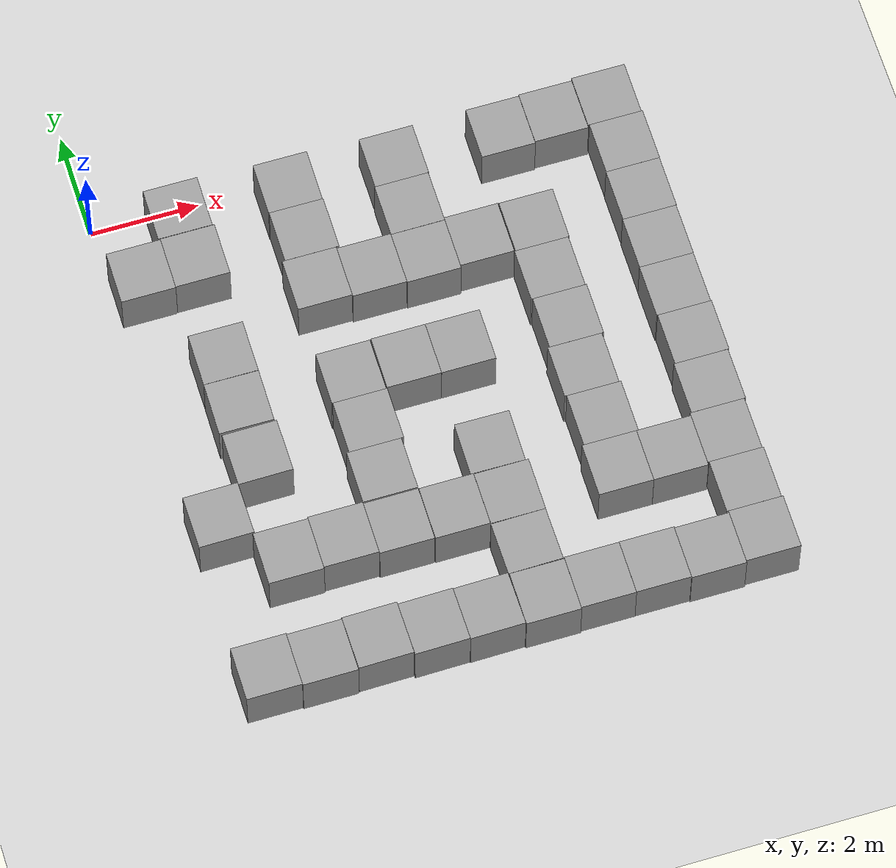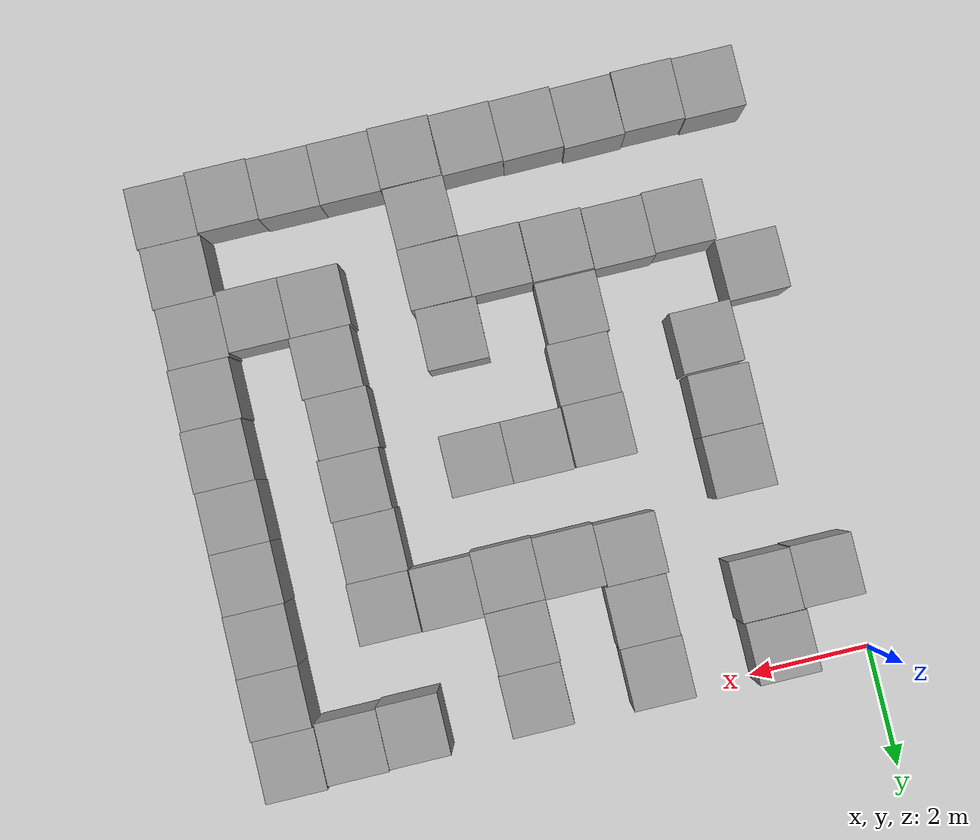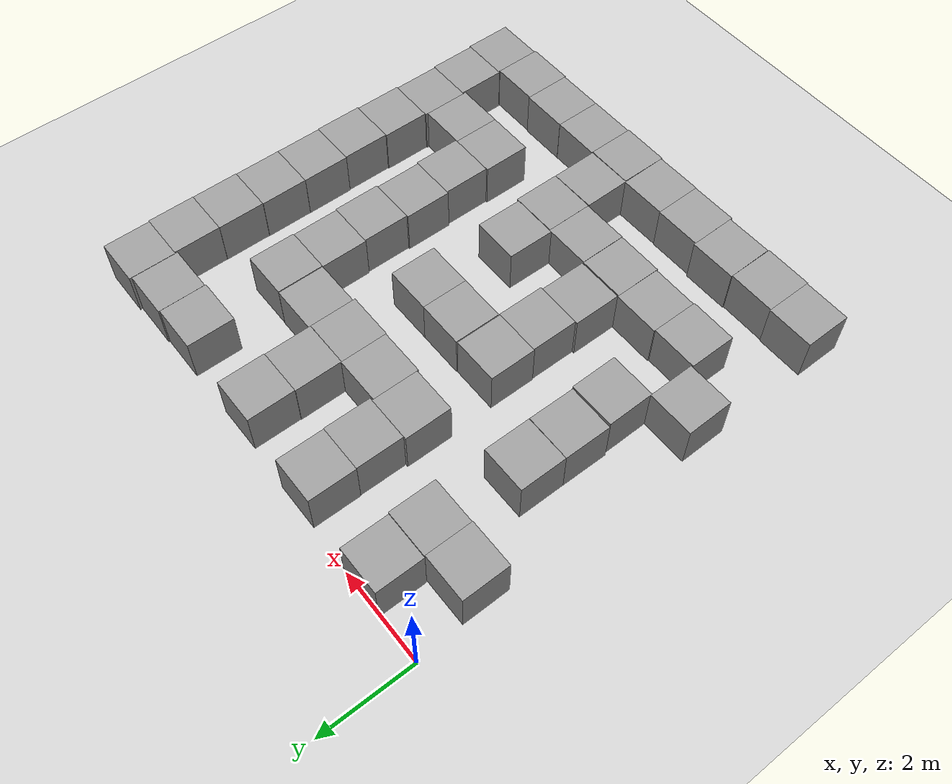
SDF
<sdf version="1.7">
 <world name="default">
  <model name="ground_plane">
   <static>1</static>
   <link name="link">
    <collision name="collision">
     <geometry><plane><normal>0 0 1</normal><size>100 100</size></plane></geometry>
     <surface><friction><ode><mu>100</mu><mu2>50</mu2></ode></friction></surface>
    </collision>
    <visual name="visual">
     <cast_shadows>0</cast_shadows>
     <geometry><plane><normal>0 0 1</normal><size>100 100</size></plane></geometry>
     <material>
      <script><uri>file://media/materials/scripts/gazebo.material</uri><name>Gazebo/Grey</name></script>
     </material>
    </visual>
   </link>
  </model>
  <model name="unit_box_54">
   <pose>3.53321 -0.535788 0.5 0 -0 -0.000787</pose>
   <link name="link">
    <inertial>
     <mass>1</mass>
     <inertia>
      <ixx>0.166667</ixx>
      <ixy>0</ixy>
      <ixz>0</ixz>
      <iyy>0.166667</iyy>
      <iyz>0</iyz>
      <izz>0.166667</izz>
     </inertia>
    </inertial>
    <collision name="collision"><geometry><box><size>1 1 1</size></box></geometry></collision>
    <visual name="visual">
     <geometry><box><size>1 1 1</size></box></geometry>
     <material>
      <script><name>Gazebo/Grey</name><uri>file://media/materials/scripts/gazebo.material</uri></script>
     </material>
    </visual>
   </link>
  </model>
  <model name="unit_box_56">
   <pose>5.49566 -0.577664 0.5 0 -0 0.003498</pose>
   <link name="link">
    <inertial>
     <mass>1</mass>
     <inertia>
      <ixx>0.166667</ixx>
      <ixy>0</ixy>
      <ixz>0</ixz>
      <iyy>0.166667</iyy>
      <iyz>0</iyz>
      <izz>0.166667</izz>
     </inertia>
    </inertial>
    <collision name="collision"><geometry><box><size>1 1 1</size></box></geometry></collision>
    <visual name="visual">
     <geometry><box><size>1 1 1</size></box></geometry>
     <material>
      <script><name>Gazebo/Grey</name><uri>file://media/materials/scripts/gazebo.material</uri></script>
     </material>
    </visual>
   </link>
  </model>
  <model name="unit_box_57">
   <pose>8.49644 -0.535621 0.5 0 -0 0</pose>
   <link name="link">
    <inertial>
     <mass>1</mass>
     <inertia>
      <ixx>0.166667</ixx>
      <ixy>0</ixy>
      <ixz>0</ixz>
      <iyy>0.166667</iyy>
      <iyz>0</iyz>
      <izz>0.166667</izz>
     </inertia>
    </inertial>
    <collision name="collision"><geometry><box><size>1 1 1</size></box></geometry></collision>
    <visual name="visual">
     <geometry><box><size>1 1 1</size></box></geometry>
     <material>
      <script><name>Gazebo/Grey</name><uri>file://media/materials/scripts/gazebo.material</uri></script>
     </material>
    </visual>
   </link>
  </model>
  <model name="unit_box_58">
   <pose>7.49483 -0.55983 0.5 0 -0 0</pose>
   <link name="link">
    <inertial>
     <mass>1</mass>
     <inertia>
      <ixx>0.166667</ixx>
      <ixy>0</ixy>
      <ixz>0</ixz>
      <iyy>0.166667</iyy>
      <iyz>0</iyz>
      <izz>0.166667</izz>
     </inertia>
    </inertial>
    <collision name="collision"><geometry><box><size>1 1 1</size></box></geometry></collision>
    <visual name="visual">
     <geometry><box><size>1 1 1</size></box></geometry>
     <material>
      <script><name>Gazebo/Grey</name><uri>file://media/materials/scripts/gazebo.material</uri></script>
     </material>
    </visual>
   </link>
  </model>
  <model name="unit_box_65">
   <pose>9.50305 -0.487629 0.5 0 -0 -0.000262</pose>
   <link name="link">
    <inertial>
     <mass>1</mass>
     <inertia>
      <ixx>0.166667</ixx>
      <ixy>0</ixy>
      <ixz>0</ixz>
      <iyy>0.166667</iyy>
      <iyz>0</iyz>
      <izz>0.166667</izz>
     </inertia>
    </inertial>
    <collision name="collision"><geometry><box><size>1 1 1</size></box></geometry></collision>
    <visual name="visual">
     <geometry><box><size>1 1 1</size></box></geometry>
     <material>
      <script><name>Gazebo/Grey</name><uri>file://media/materials/scripts/gazebo.material</uri></script>
     </material>
    </visual>
   </link>
  </model>
  <model name="unit_box_66">
   <pose>9.52677 -1.48764 0.5 0 0 -0.00026</pose>
   <link name="link">
    <inertial>
     <mass>1</mass>
     <inertia>
      <ixx>0.166667</ixx>
      <ixy>0</ixy>
      <ixz>0</ixz>
      <iyy>0.166667</iyy>
      <iyz>0</iyz>
      <izz>0.166667</izz>
     </inertia>
    </inertial>
    <collision name="collision"><geometry><box><size>1 1 1</size></box></geometry></collision>
    <visual name="visual">
     <geometry><box><size>1 1 1</size></box></geometry>
     <material>
      <script><name>Gazebo/Grey</name><uri>file://media/materials/scripts/gazebo.material</uri></script>
     </material>
    </visual>
   </link>
  </model>
  <model name="unit_box_67">
   <pose>9.52057 -2.48769 0.5 -0 -0 -0.000159</pose>
   <link name="link">
    <inertial>
     <mass>1</mass>
     <inertia>
      <ixx>0.166667</ixx>
      <ixy>0</ixy>
      <ixz>0</ixz>
      <iyy>0.166667</iyy>
      <iyz>0</iyz>
      <izz>0.166667</izz>
     </inertia>
    </inertial>
    <collision name="collision"><geometry><box><size>1 1 1</size></box></geometry></collision>
    <visual name="visual">
     <geometry><box><size>1 1 1</size></box></geometry>
     <material>
      <script><name>Gazebo/Grey</name><uri>file://media/materials/scripts/gazebo.material</uri></script>
     </material>
    </visual>
   </link>
  </model>
  <model name="unit_box_68">
   <pose>9.51045 -3.48769 0.5 0 0 -0.00016</pose>
   <link name="link">
    <inertial>
     <mass>1</mass>
     <inertia>
      <ixx>0.166667</ixx>
      <ixy>0</ixy>
      <ixz>0</ixz>
      <iyy>0.166667</iyy>
      <iyz>0</iyz>
      <izz>0.166667</izz>
     </inertia>
    </inertial>
    <collision name="collision"><geometry><box><size>1 1 1</size></box></geometry></collision>
    <visual name="visual">
     <geometry><box><size>1 1 1</size></box></geometry>
     <material>
      <script><name>Gazebo/Grey</name><uri>file://media/materials/scripts/gazebo.material</uri></script>
     </material>
    </visual>
   </link>
  </model>
  <model name="unit_box_69">
   <pose>9.50728 -4.48769 0.5 0 -0 -0.000159</pose>
   <link name="link">
    <inertial>
     <mass>1</mass>
     <inertia>
      <ixx>0.166667</ixx>
      <ixy>0</ixy>
      <ixz>0</ixz>
      <iyy>0.166667</iyy>
      <iyz>0</iyz>
      <izz>0.166667</izz>
     </inertia>
    </inertial>
    <collision name="collision"><geometry><box><size>1 1 1</size></box></geometry></collision>
    <visual name="visual">
     <geometry><box><size>1 1 1</size></box></geometry>
     <material>
      <script><name>Gazebo/Grey</name><uri>file://media/materials/scripts/gazebo.material</uri></script>
     </material>
    </visual>
   </link>
  </model>
  <model name="unit_box_70">
   <pose>9.52148 -5.48775 0.5 0 -0 -4.1e-05</pose>
   <link name="link">
    <inertial>
     <mass>1</mass>
     <inertia>
      <ixx>0.166667</ixx>
      <ixy>0</ixy>
      <ixz>0</ixz>
      <iyy>0.166667</iyy>
      <iyz>0</iyz>
      <izz>0.166667</izz>
     </inertia>
    </inertial>
    <collision name="collision"><geometry><box><size>1 1 1</size></box></geometry></collision>
    <visual name="visual">
     <geometry><box><size>1 1 1</size></box></geometry>
     <material>
      <script><name>Gazebo/Grey</name><uri>file://media/materials/scripts/gazebo.material</uri></script>
     </material>
    </visual>
   </link>
  </model>
  <model name="unit_box_71">
   <pose>9.49899 -6.48777 0.5 -0 -0 -1e-05</pose>
   <link name="link">
    <inertial>
     <mass>1</mass>
     <inertia>
      <ixx>0.166667</ixx>
      <ixy>0</ixy>
      <ixz>0</ixz>
      <iyy>0.166667</iyy>
      <iyz>0</iyz>
      <izz>0.166667</izz>
     </inertia>
    </inertial>
    <collision name="collision"><geometry><box><size>1 1 1</size></box></geometry></collision>
    <visual name="visual">
     <geometry><box><size>1 1 1</size></box></geometry>
     <material>
      <script><name>Gazebo/Grey</name><uri>file://media/materials/scripts/gazebo.material</uri></script>
     </material>
    </visual>
   </link>
  </model>
  <model name="unit_box_72">
   <pose>9.47396 -7.48783 0.5 0 -0 3.1e-05</pose>
   <link name="link">
    <inertial>
     <mass>1</mass>
     <inertia>
      <ixx>0.166667</ixx>
      <ixy>0</ixy>
      <ixz>0</ixz>
      <iyy>0.166667</iyy>
      <iyz>0</iyz>
      <izz>0.166667</izz>
     </inertia>
    </inertial>
    <collision name="collision"><geometry><box><size>1 1 1</size></box></geometry></collision>
    <visual name="visual">
     <geometry><box><size>1 1 1</size></box></geometry>
     <material>
      <script><name>Gazebo/Grey</name><uri>file://media/materials/scripts/gazebo.material</uri></script>
     </material>
    </visual>
   </link>
  </model>
  <model name="unit_box_73">
   <pose>9.4996 -8.48792 0.5 0 -0 0.000208</pose>
   <link name="link">
    <inertial>
     <mass>1</mass>
     <inertia>
      <ixx>0.166667</ixx>
      <ixy>0</ixy>
      <ixz>0</ixz>
      <iyy>0.166667</iyy>
      <iyz>0</iyz>
      <izz>0.166667</izz>
     </inertia>
    </inertial>
    <collision name="collision"><geometry><box><size>1 1 1</size></box></geometry></collision>
    <visual name="visual">
     <geometry><box><size>1 1 1</size></box></geometry>
     <material>
      <script><name>Gazebo/Grey</name><uri>file://media/materials/scripts/gazebo.material</uri></script>
     </material>
    </visual>
   </link>
  </model>
  <model name="unit_box_74">
   <pose>9.52853 -9.48814 0.5 0 0 -0.000121</pose>
   <link name="link">
    <inertial>
     <mass>1</mass>
     <inertia>
      <ixx>0.166667</ixx>
      <ixy>0</ixy>
      <ixz>0</ixz>
      <iyy>0.166667</iyy>
      <iyz>0</iyz>
      <izz>0.166667</izz>
     </inertia>
    </inertial>
    <collision name="collision"><geometry><box><size>1 1 1</size></box></geometry></collision>
    <visual name="visual">
     <geometry><box><size>1 1 1</size></box></geometry>
     <material>
      <script><name>Gazebo/Grey</name><uri>file://media/materials/scripts/gazebo.material</uri></script>
     </material>
    </visual>
   </link>
  </model>
  <model name="unit_box_98">
   <pose>8.52848 -9.52232 0.5 -0 -0 -0.000154</pose>
   <link name="link">
    <inertial>
     <mass>1</mass>
     <inertia>
      <ixx>0.166667</ixx>
      <ixy>0</ixy>
      <ixz>0</ixz>
      <iyy>0.166667</iyy>
      <iyz>0</iyz>
      <izz>0.166667</izz>
     </inertia>
    </inertial>
    <collision name="collision"><geometry><box><size>1 1 1</size></box></geometry></collision>
    <visual name="visual">
     <geometry><box><size>1 1 1</size></box></geometry>
     <material>
      <script><name>Gazebo/Grey</name><uri>file://media/materials/scripts/gazebo.material</uri></script>
     </material>
    </visual>
   </link>
  </model>
  <model name="unit_box_99">
   <pose>7.52847 -9.50273 0.5 0 0 -0.000146</pose>
   <link name="link">
    <inertial>
     <mass>1</mass>
     <inertia>
      <ixx>0.166667</ixx>
      <ixy>0</ixy>
      <ixz>0</ixz>
      <iyy>0.166667</iyy>
      <iyz>0</iyz>
      <izz>0.166667</izz>
     </inertia>
    </inertial>
    <collision name="collision"><geometry><box><size>1 1 1</size></box></geometry></collision>
    <visual name="visual">
     <geometry><box><size>1 1 1</size></box></geometry>
     <material>
      <script><name>Gazebo/Grey</name><uri>file://media/materials/scripts/gazebo.material</uri></script>
     </material>
    </visual>
   </link>
  </model>
  <model name="unit_box_100">
   <pose>6.52835 -9.50627 0.5 0 0 -0.000115</pose>
   <link name="link">
    <inertial>
     <mass>1</mass>
     <inertia>
      <ixx>0.166667</ixx>
      <ixy>0</ixy>
      <ixz>0</ixz>
      <iyy>0.166667</iyy>
      <iyz>0</iyz>
      <izz>0.166667</izz>
     </inertia>
    </inertial>
    <collision name="collision"><geometry><box><size>1 1 1</size></box></geometry></collision>
    <visual name="visual">
     <geometry><box><size>1 1 1</size></box></geometry>
     <material>
      <script><name>Gazebo/Grey</name><uri>file://media/materials/scripts/gazebo.material</uri></script>
     </material>
    </visual>
   </link>
  </model>
  <model name="unit_box_101">
   <pose>5.52827 -9.53004 0.5 -0 -0 -0.000106</pose>
   <link name="link">
    <inertial>
     <mass>1</mass>
     <inertia>
      <ixx>0.166667</ixx>
      <ixy>0</ixy>
      <ixz>0</ixz>
      <iyy>0.166667</iyy>
      <iyz>0</iyz>
      <izz>0.166667</izz>
     </inertia>
    </inertial>
    <collision name="collision"><geometry><box><size>1 1 1</size></box></geometry></collision>
    <visual name="visual">
     <geometry><box><size>1 1 1</size></box></geometry>
     <material>
      <script><name>Gazebo/Grey</name><uri>file://media/materials/scripts/gazebo.material</uri></script>
     </material>
    </visual>
   </link>
  </model>
  <model name="unit_box_102">
   <pose>4.52012 -9.51151 0.5 0 -0 0.01315</pose>
   <link name="link">
    <inertial>
     <mass>1</mass>
     <inertia>
      <ixx>0.166667</ixx>
      <ixy>0</ixy>
      <ixz>0</ixz>
      <iyy>0.166667</iyy>
      <iyz>0</iyz>
      <izz>0.166667</izz>
     </inertia>
    </inertial>
    <collision name="collision"><geometry><box><size>1 1 1</size></box></geometry></collision>
    <visual name="visual">
     <geometry><box><size>1 1 1</size></box></geometry>
     <material>
      <script><name>Gazebo/Grey</name><uri>file://media/materials/scripts/gazebo.material</uri></script>
     </material>
    </visual>
   </link>
  </model>
  <model name="unit_box_103">
   <pose>3.51999 -9.51224 0.5 0 -0 0.013044</pose>
   <link name="link">
    <inertial>
     <mass>1</mass>
     <inertia>
      <ixx>0.166667</ixx>
      <ixy>0</ixy>
      <ixz>0</ixz>
      <iyy>0.166667</iyy>
      <iyz>0</iyz>
      <izz>0.166667</izz>
     </inertia>
    </inertial>
    <collision name="collision"><geometry><box><size>1 1 1</size></box></geometry></collision>
    <visual name="visual">
     <geometry><box><size>1 1 1</size></box></geometry>
     <material>
      <script><name>Gazebo/Grey</name><uri>file://media/materials/scripts/gazebo.material</uri></script>
     </material>
    </visual>
   </link>
  </model>
  <model name="unit_box_104">
   <pose>2.51937 -9.48224 0.5 0 -0 0.012726</pose>
   <link name="link">
    <inertial>
     <mass>1</mass>
     <inertia>
      <ixx>0.166667</ixx>
      <ixy>0</ixy>
      <ixz>0</ixz>
      <iyy>0.166667</iyy>
      <iyz>0</iyz>
      <izz>0.166667</izz>
     </inertia>
    </inertial>
    <collision name="collision"><geometry><box><size>1 1 1</size></box></geometry></collision>
    <visual name="visual">
     <geometry><box><size>1 1 1</size></box></geometry>
     <material>
      <script><name>Gazebo/Grey</name><uri>file://media/materials/scripts/gazebo.material</uri></script>
     </material>
    </visual>
   </link>
  </model>
  <model name="unit_box_105">
   <pose>1.51425 -9.51254 0.5 0 -0 0.001838</pose>
   <link name="link">
    <inertial>
     <mass>1</mass>
     <inertia>
      <ixx>0.166667</ixx>
      <ixy>0</ixy>
      <ixz>0</ixz>
      <iyy>0.166667</iyy>
      <iyz>0</iyz>
      <izz>0.166667</izz>
     </inertia>
    </inertial>
    <collision name="collision"><geometry><box><size>1 1 1</size></box></geometry></collision>
    <visual name="visual">
     <geometry><box><size>1 1 1</size></box></geometry>
     <material>
      <script><name>Gazebo/Grey</name><uri>file://media/materials/scripts/gazebo.material</uri></script>
     </material>
    </visual>
   </link>
  </model>
  <model name="unit_box_106">
   <pose>0.514153 -9.49324 0.5 0 -0 0.001707</pose>
   <link name="link">
    <inertial>
     <mass>1</mass>
     <inertia>
      <ixx>0.166667</ixx>
      <ixy>0</ixy>
      <ixz>0</ixz>
      <iyy>0.166667</iyy>
      <iyz>0</iyz>
      <izz>0.166667</izz>
     </inertia>
    </inertial>
    <collision name="collision"><geometry><box><size>1 1 1</size></box></geometry></collision>
    <visual name="visual">
     <geometry><box><size>1 1 1</size></box></geometry>
     <material>
      <script><name>Gazebo/Grey</name><uri>file://media/materials/scripts/gazebo.material</uri></script>
     </material>
    </visual>
   </link>
  </model>
  <model name="unit_box_120">
   <pose>5.48717 -1.57773 0.5 0 -0 0.003505</pose>
   <link name="link">
    <inertial>
     <mass>1</mass>
     <inertia>
      <ixx>0.166667</ixx>
      <ixy>0</ixy>
      <ixz>0</ixz>
      <iyy>0.166667</iyy>
      <iyz>0</iyz>
      <izz>0.166667</izz>
     </inertia>
    </inertial>
    <collision name="collision"><geometry><box><size>1 1 1</size></box></geometry></collision>
    <visual name="visual">
     <geometry><box><size>1 1 1</size></box></geometry>
     <material>
      <script><name>Gazebo/Grey</name><uri>file://media/materials/scripts/gazebo.material</uri></script>
     </material>
    </visual>
   </link>
  </model>
  <model name="unit_box_121">
   <pose>5.48928 -2.57928 0.5 0 -0 0.000768</pose>
   <link name="link">
    <inertial>
     <mass>1</mass>
     <inertia>
      <ixx>0.166667</ixx>
      <ixy>0</ixy>
      <ixz>0</ixz>
      <iyy>0.166667</iyy>
      <iyz>0</iyz>
      <izz>0.166667</izz>
     </inertia>
    </inertial>
    <collision name="collision"><geometry><box><size>1 1 1</size></box></geometry></collision>
    <visual name="visual">
     <geometry><box><size>1 1 1</size></box></geometry>
     <material>
      <script><name>Gazebo/Grey</name><uri>file://media/materials/scripts/gazebo.material</uri></script>
     </material>
    </visual>
   </link>
  </model>
  <model name="unit_box_122">
   <pose>6.48926 -2.53145 0.5 0 -0 0.000737</pose>
   <link name="link">
    <inertial>
     <mass>1</mass>
     <inertia>
      <ixx>0.166667</ixx>
      <ixy>0</ixy>
      <ixz>0</ixz>
      <iyy>0.166667</iyy>
      <iyz>0</iyz>
      <izz>0.166667</izz>
     </inertia>
    </inertial>
    <collision name="collision"><geometry><box><size>1 1 1</size></box></geometry></collision>
    <visual name="visual">
     <geometry><box><size>1 1 1</size></box></geometry>
     <material>
      <script><name>Gazebo/Grey</name><uri>file://media/materials/scripts/gazebo.material</uri></script>
     </material>
    </visual>
   </link>
  </model>
  <model name="unit_box_123">
   <pose>7.50563 -2.53783 0.5 0 0 -0.00098</pose>
   <link name="link">
    <inertial>
     <mass>1</mass>
     <inertia>
      <ixx>0.166667</ixx>
      <ixy>0</ixy>
      <ixz>0</ixz>
      <iyy>0.166667</iyy>
      <iyz>0</iyz>
      <izz>0.166667</izz>
     </inertia>
    </inertial>
    <collision name="collision"><geometry><box><size>1 1 1</size></box></geometry></collision>
    <visual name="visual">
     <geometry><box><size>1 1 1</size></box></geometry>
     <material>
      <script><name>Gazebo/Grey</name><uri>file://media/materials/scripts/gazebo.material</uri></script>
     </material>
    </visual>
   </link>
  </model>
  <model name="unit_box_124">
   <pose>3.54427 -1.53581 0.5 0 -0 -0.000761</pose>
   <link name="link">
    <inertial>
     <mass>1</mass>
     <inertia>
      <ixx>0.166667</ixx>
      <ixy>0</ixy>
      <ixz>0</ixz>
      <iyy>0.166667</iyy>
      <iyz>0</iyz>
      <izz>0.166667</izz>
     </inertia>
    </inertial>
    <collision name="collision"><geometry><box><size>1 1 1</size></box></geometry></collision>
    <visual name="visual">
     <geometry><box><size>1 1 1</size></box></geometry>
     <material>
      <script><name>Gazebo/Grey</name><uri>file://media/materials/scripts/gazebo.material</uri></script>
     </material>
    </visual>
   </link>
  </model>
  <model name="unit_box_125">
   <pose>3.48919 -2.53653 0.5 0 -0 0.000748</pose>
   <link name="link">
    <inertial>
     <mass>1</mass>
     <inertia>
      <ixx>0.166667</ixx>
      <ixy>0</ixy>
      <ixz>0</ixz>
      <iyy>0.166667</iyy>
      <iyz>0</iyz>
      <izz>0.166667</izz>
     </inertia>
    </inertial>
    <collision name="collision"><geometry><box><size>1 1 1</size></box></geometry></collision>
    <visual name="visual">
     <geometry><box><size>1 1 1</size></box></geometry>
     <material>
      <script><name>Gazebo/Grey</name><uri>file://media/materials/scripts/gazebo.material</uri></script>
     </material>
    </visual>
   </link>
  </model>
  <model name="unit_box_126">
   <pose>4.48923 -2.56523 0.5 0 -0 0.000796</pose>
   <link name="link">
    <inertial>
     <mass>1</mass>
     <inertia>
      <ixx>0.166667</ixx>
      <ixy>0</ixy>
      <ixz>0</ixz>
      <iyy>0.166667</iyy>
      <iyz>0</iyz>
      <izz>0.166667</izz>
     </inertia>
    </inertial>
    <collision name="collision"><geometry><box><size>1 1 1</size></box></geometry></collision>
    <visual name="visual">
     <geometry><box><size>1 1 1</size></box></geometry>
     <material>
      <script><name>Gazebo/Grey</name><uri>file://media/materials/scripts/gazebo.material</uri></script>
     </material>
    </visual>
   </link>
  </model>
  <model name="unit_box_192">
   <pose>0.547314 -1.49037 0.5 0 -0 0.000227</pose>
   <link name="link">
    <inertial>
     <mass>1</mass>
     <inertia>
      <ixx>0.166667</ixx>
      <ixy>0</ixy>
      <ixz>0</ixz>
      <iyy>0.166667</iyy>
      <iyz>0</iyz>
      <izz>0.166667</izz>
     </inertia>
    </inertial>
    <collision name="collision"><geometry><box><size>1 1 1</size></box></geometry></collision>
    <visual name="visual">
     <geometry><box><size>1 1 1</size></box></geometry>
     <material>
      <script><name>Gazebo/Grey</name><uri>file://media/materials/scripts/gazebo.material</uri></script>
     </material>
    </visual>
   </link>
  </model>
  <model name="unit_box_193">
   <pose>1.54732 -1.47696 0.5 0 -0 0.000223</pose>
   <link name="link">
    <inertial>
     <mass>1</mass>
     <inertia>
      <ixx>0.166667</ixx>
      <ixy>0</ixy>
      <ixz>0</ixz>
      <iyy>0.166667</iyy>
      <iyz>0</iyz>
      <izz>0.166667</izz>
     </inertia>
    </inertial>
    <collision name="collision"><geometry><box><size>1 1 1</size></box></geometry></collision>
    <visual name="visual">
     <geometry><box><size>1 1 1</size></box></geometry>
     <material>
      <script><name>Gazebo/Grey</name><uri>file://media/materials/scripts/gazebo.material</uri></script>
     </material>
    </visual>
   </link>
  </model>
  <model name="unit_box_194">
   <pose>1.5142 -0.470571 0.5 0 -0 0</pose>
   <link name="link">
    <inertial>
     <mass>1</mass>
     <inertia>
      <ixx>0.166667</ixx>
      <ixy>0</ixy>
      <ixz>0</ixz>
      <iyy>0.166667</iyy>
      <iyz>0</iyz>
      <izz>0.166667</izz>
     </inertia>
    </inertial>
    <collision name="collision"><geometry><box><size>1 1 1</size></box></geometry></collision>
    <visual name="visual">
     <geometry><box><size>1 1 1</size></box></geometry>
     <material>
      <script><name>Gazebo/Grey</name><uri>file://media/materials/scripts/gazebo.material</uri></script>
     </material>
    </visual>
   </link>
  </model>
  <model name="unit_box_195">
   <pose>7.48564 -3.53782 0.5 0 -0 -0.000976</pose>
   <link name="link">
    <inertial>
     <mass>1</mass>
     <inertia>
      <ixx>0.166667</ixx>
      <ixy>0</ixy>
      <ixz>0</ixz>
      <iyy>0.166667</iyy>
      <iyz>0</iyz>
      <izz>0.166667</izz>
     </inertia>
    </inertial>
    <collision name="collision"><geometry><box><size>1 1 1</size></box></geometry></collision>
    <visual name="visual">
     <geometry><box><size>1 1 1</size></box></geometry>
     <material>
      <script><name>Gazebo/Grey</name><uri>file://media/materials/scripts/gazebo.material</uri></script>
     </material>
    </visual>
   </link>
  </model>
  <model name="unit_box_196">
   <pose>7.5095 -4.53792 0.5 0 0 -0.000807</pose>
   <link name="link">
    <inertial>
     <mass>1</mass>
     <inertia>
      <ixx>0.166667</ixx>
      <ixy>0</ixy>
      <ixz>0</ixz>
      <iyy>0.166667</iyy>
      <iyz>0</iyz>
      <izz>0.166667</izz>
     </inertia>
    </inertial>
    <collision name="collision"><geometry><box><size>1 1 1</size></box></geometry></collision>
    <visual name="visual">
     <geometry><box><size>1 1 1</size></box></geometry>
     <material>
      <script><name>Gazebo/Grey</name><uri>file://media/materials/scripts/gazebo.material</uri></script>
     </material>
    </visual>
   </link>
  </model>
  <model name="unit_box_197">
   <pose>7.4755 -5.53794 0.5 0 -0 -0.000721</pose>
   <link name="link">
    <inertial>
     <mass>1</mass>
     <inertia>
      <ixx>0.166667</ixx>
      <ixy>0</ixy>
      <ixz>0</ixz>
      <iyy>0.166667</iyy>
      <iyz>0</iyz>
      <izz>0.166667</izz>
     </inertia>
    </inertial>
    <collision name="collision"><geometry><box><size>1 1 1</size></box></geometry></collision>
    <visual name="visual">
     <geometry><box><size>1 1 1</size></box></geometry>
     <material>
      <script><name>Gazebo/Grey</name><uri>file://media/materials/scripts/gazebo.material</uri></script>
     </material>
    </visual>
   </link>
  </model>
  <model name="unit_box_198">
   <pose>7.50978 -6.53801 0.5 0 0 -0.000622</pose>
   <link name="link">
    <inertial>
     <mass>1</mass>
     <inertia>
      <ixx>0.166667</ixx>
      <ixy>0</ixy>
      <ixz>0</ixz>
      <iyy>0.166667</iyy>
      <iyz>0</iyz>
      <izz>0.166667</izz>
     </inertia>
    </inertial>
    <collision name="collision"><geometry><box><size>1 1 1</size></box></geometry></collision>
    <visual name="visual">
     <geometry><box><size>1 1 1</size></box></geometry>
     <material>
      <script><name>Gazebo/Grey</name><uri>file://media/materials/scripts/gazebo.material</uri></script>
     </material>
    </visual>
   </link>
  </model>
  <model name="unit_box_199">
   <pose>7.47392 -7.53828 0.5 -0 -0 -4.6e-05</pose>
   <link name="link">
    <inertial>
     <mass>1</mass>
     <inertia>
      <ixx>0.166667</ixx>
      <ixy>0</ixy>
      <ixz>0</ixz>
      <iyy>0.166667</iyy>
      <iyz>0</iyz>
      <izz>0.166667</izz>
     </inertia>
    </inertial>
    <collision name="collision"><geometry><box><size>1 1 1</size></box></geometry></collision>
    <visual name="visual">
     <geometry><box><size>1 1 1</size></box></geometry>
     <material>
      <script><name>Gazebo/Grey</name><uri>file://media/materials/scripts/gazebo.material</uri></script>
     </material>
    </visual>
   </link>
  </model>
  <model name="unit_box_200">
   <pose>8.47395 -7.53973 0.5 0 -0 1.6e-05</pose>
   <link name="link">
    <inertial>
     <mass>1</mass>
     <inertia>
      <ixx>0.166667</ixx>
      <ixy>0</ixy>
      <ixz>0</ixz>
      <iyy>0.166667</iyy>
      <iyz>0</iyz>
      <izz>0.166667</izz>
     </inertia>
    </inertial>
    <collision name="collision"><geometry><box><size>1 1 1</size></box></geometry></collision>
    <visual name="visual">
     <geometry><box><size>1 1 1</size></box></geometry>
     <material>
      <script><name>Gazebo/Grey</name><uri>file://media/materials/scripts/gazebo.material</uri></script>
     </material>
    </visual>
   </link>
  </model>
  <model name="unit_box_201">
   <pose>5.50761 -8.5232 0.5 0 -0 0.012342</pose>
   <link name="link">
    <inertial>
     <mass>1</mass>
     <inertia>
      <ixx>0.166667</ixx>
      <ixy>0</ixy>
      <ixz>0</ixz>
      <iyy>0.166667</iyy>
      <iyz>0</iyz>
      <izz>0.166667</izz>
     </inertia>
    </inertial>
    <collision name="collision"><geometry><box><size>1 1 1</size></box></geometry></collision>
    <visual name="visual">
     <geometry><box><size>1 1 1</size></box></geometry>
     <material>
      <script><name>Gazebo/Grey</name><uri>file://media/materials/scripts/gazebo.material</uri></script>
     </material>
    </visual>
   </link>
  </model>
  <model name="unit_box_202">
   <pose>5.50503 -7.51838 0.5 0 -0 0.002657</pose>
   <link name="link">
    <inertial>
     <mass>1</mass>
     <inertia>
      <ixx>0.166667</ixx>
      <ixy>0</ixy>
      <ixz>0</ixz>
      <iyy>0.166667</iyy>
      <iyz>0</iyz>
      <izz>0.166667</izz>
     </inertia>
    </inertial>
    <collision name="collision"><geometry><box><size>1 1 1</size></box></geometry></collision>
    <visual name="visual">
     <geometry><box><size>1 1 1</size></box></geometry>
     <material>
      <script><name>Gazebo/Grey</name><uri>file://media/materials/scripts/gazebo.material</uri></script>
     </material>
    </visual>
   </link>
  </model>
  <model name="unit_box_203">
   <pose>5.45467 -6.51241 0.5 -0 -0 -0.008084</pose>
   <link name="link">
    <inertial>
     <mass>1</mass>
     <inertia>
      <ixx>0.166667</ixx>
      <ixy>0</ixy>
      <ixz>0</ixz>
      <iyy>0.166667</iyy>
      <iyz>0</iyz>
      <izz>0.166667</izz>
     </inertia>
    </inertial>
    <collision name="collision"><geometry><box><size>1 1 1</size></box></geometry></collision>
    <visual name="visual">
     <geometry><box><size>1 1 1</size></box></geometry>
     <material>
      <script><name>Gazebo/Grey</name><uri>file://media/materials/scripts/gazebo.material</uri></script>
     </material>
    </visual>
   </link>
  </model>
  <model name="unit_box_204">
   <pose>4.50462 -7.50979 0.5 0 -0 0.001974</pose>
   <link name="link">
    <inertial>
     <mass>1</mass>
     <inertia>
      <ixx>0.166667</ixx>
      <ixy>0</ixy>
      <ixz>0</ixz>
      <iyy>0.166667</iyy>
      <iyz>0</iyz>
      <izz>0.166667</izz>
     </inertia>
    </inertial>
    <collision name="collision"><geometry><box><size>1 1 1</size></box></geometry></collision>
    <visual name="visual">
     <geometry><box><size>1 1 1</size></box></geometry>
     <material>
      <script><name>Gazebo/Grey</name><uri>file://media/materials/scripts/gazebo.material</uri></script>
     </material>
    </visual>
   </link>
  </model>
  <model name="unit_box_205">
   <pose>3.49908 -7.50342 0.5 0 -0 0</pose>
   <link name="link">
    <inertial>
     <mass>1</mass>
     <inertia>
      <ixx>0.166667</ixx>
      <ixy>0</ixy>
      <ixz>0</ixz>
      <iyy>0.166667</iyy>
      <iyz>0</iyz>
      <izz>0.166667</izz>
     </inertia>
    </inertial>
    <collision name="collision"><geometry><box><size>1 1 1</size></box></geometry></collision>
    <visual name="visual">
     <geometry><box><size>1 1 1</size></box></geometry>
     <material>
      <script><name>Gazebo/Grey</name><uri>file://media/materials/scripts/gazebo.material</uri></script>
     </material>
    </visual>
   </link>
  </model>
  <model name="unit_box_206">
   <pose>2.49708 -7.47591 0.5 0 -0 2.7e-05</pose>
   <link name="link">
    <inertial>
     <mass>1</mass>
     <inertia>
      <ixx>0.166667</ixx>
      <ixy>0</ixy>
      <ixz>0</ixz>
      <iyy>0.166667</iyy>
      <iyz>0</iyz>
      <izz>0.166667</izz>
     </inertia>
    </inertial>
    <collision name="collision"><geometry><box><size>1 1 1</size></box></geometry></collision>
    <visual name="visual">
     <geometry><box><size>1 1 1</size></box></geometry>
     <material>
      <script><name>Gazebo/Grey</name><uri>file://media/materials/scripts/gazebo.material</uri></script>
     </material>
    </visual>
   </link>
  </model>
  <model name="unit_box_207">
   <pose>1.49707 -7.50243 0.5 0 -0 1.9e-05</pose>
   <link name="link">
    <inertial>
     <mass>1</mass>
     <inertia>
      <ixx>0.166667</ixx>
      <ixy>0</ixy>
      <ixz>0</ixz>
      <iyy>0.166667</iyy>
      <iyz>0</iyz>
      <izz>0.166667</izz>
     </inertia>
    </inertial>
    <collision name="collision"><geometry><box><size>1 1 1</size></box></geometry></collision>
    <visual name="visual">
     <geometry><box><size>1 1 1</size></box></geometry>
     <material>
      <script><name>Gazebo/Grey</name><uri>file://media/materials/scripts/gazebo.material</uri></script>
     </material>
    </visual>
   </link>
  </model>
  <model name="unit_box_209">
   <pose>0.527769 -6.48608 0.5 0 -0 0.009577</pose>
   <link name="link">
    <inertial>
     <mass>1</mass>
     <inertia>
      <ixx>0.166667</ixx>
      <ixy>0</ixy>
      <ixz>0</ixz>
      <iyy>0.166667</iyy>
      <iyz>0</iyz>
      <izz>0.166667</izz>
     </inertia>
    </inertial>
    <collision name="collision"><geometry><box><size>1 1 1</size></box></geometry></collision>
    <visual name="visual">
     <geometry><box><size>1 1 1</size></box></geometry>
     <material>
      <script><name>Gazebo/Grey</name><uri>file://media/materials/scripts/gazebo.material</uri></script>
     </material>
    </visual>
   </link>
  </model>
  <model name="unit_box_211">
   <pose>1.51872 -5.5184 0.5 0 -0 0.009256</pose>
   <link name="link">
    <inertial>
     <mass>1</mass>
     <inertia>
      <ixx>0.166667</ixx>
      <ixy>0</ixy>
      <ixz>0</ixz>
      <iyy>0.166667</iyy>
      <iyz>0</iyz>
      <izz>0.166667</izz>
     </inertia>
    </inertial>
    <collision name="collision"><geometry><box><size>1 1 1</size></box></geometry></collision>
    <visual name="visual">
     <geometry><box><size>1 1 1</size></box></geometry>
     <material>
      <script><name>Gazebo/Grey</name><uri>file://media/materials/scripts/gazebo.material</uri></script>
     </material>
    </visual>
   </link>
  </model>
  <model name="unit_box_212">
   <pose>1.48041 -4.48461 0.5 -0 -0 -0.006887</pose>
   <link name="link">
    <inertial>
     <mass>1</mass>
     <inertia>
      <ixx>0.166667</ixx>
      <ixy>0</ixy>
      <ixz>0</ixz>
      <iyy>0.166667</iyy>
      <iyz>0</iyz>
      <izz>0.166667</izz>
     </inertia>
    </inertial>
    <collision name="collision"><geometry><box><size>1 1 1</size></box></geometry></collision>
    <visual name="visual">
     <geometry><box><size>1 1 1</size></box></geometry>
     <material>
      <script><name>Gazebo/Grey</name><uri>file://media/materials/scripts/gazebo.material</uri></script>
     </material>
    </visual>
   </link>
  </model>
  <model name="unit_box_213">
   <pose>1.48425 -3.48138 0.5 0 -0 -0.000419</pose>
   <link name="link">
    <inertial>
     <mass>1</mass>
     <inertia>
      <ixx>0.166667</ixx>
      <ixy>0</ixy>
      <ixz>0</ixz>
      <iyy>0.166667</iyy>
      <iyz>0</iyz>
      <izz>0.166667</izz>
     </inertia>
    </inertial>
    <collision name="collision"><geometry><box><size>1 1 1</size></box></geometry></collision>
    <visual name="visual">
     <geometry><box><size>1 1 1</size></box></geometry>
     <material>
      <script><name>Gazebo/Grey</name><uri>file://media/materials/scripts/gazebo.material</uri></script>
     </material>
    </visual>
   </link>
  </model>
  <model name="unit_box_214">
   <pose>3.52876 -4.48142 0.5 0 -0 0.000177</pose>
   <link name="link">
    <inertial>
     <mass>1</mass>
     <inertia>
      <ixx>0.166667</ixx>
      <ixy>0</ixy>
      <ixz>0</ixz>
      <iyy>0.166667</iyy>
      <iyz>0</iyz>
      <izz>0.166667</izz>
     </inertia>
    </inertial>
    <collision name="collision"><geometry><box><size>1 1 1</size></box></geometry></collision>
    <visual name="visual">
     <geometry><box><size>1 1 1</size></box></geometry>
     <material>
      <script><name>Gazebo/Grey</name><uri>file://media/materials/scripts/gazebo.material</uri></script>
     </material>
    </visual>
   </link>
  </model>
  <model name="unit_box_215">
   <pose>4.54741 -4.46877 0.5 -0 -0 -0</pose>
   <link name="link">
    <inertial>
     <mass>1</mass>
     <inertia>
      <ixx>0.166667</ixx>
      <ixy>0</ixy>
      <ixz>0</ixz>
      <iyy>0.166667</iyy>
      <iyz>0</iyz>
      <izz>0.166667</izz>
     </inertia>
    </inertial>
    <collision name="collision"><geometry><box><size>1 1 1</size></box></geometry></collision>
    <visual name="visual">
     <geometry><box><size>1 1 1</size></box></geometry>
     <material>
      <script><name>Gazebo/Grey</name><uri>file://media/materials/scripts/gazebo.material</uri></script>
     </material>
    </visual>
   </link>
  </model>
  <model name="unit_box_216">
   <pose>5.54742 -4.46962 0.5 0 -0 0</pose>
   <link name="link">
    <inertial>
     <mass>1</mass>
     <inertia>
      <ixx>0.166667</ixx>
      <ixy>0</ixy>
      <ixz>0</ixz>
      <iyy>0.166667</iyy>
      <iyz>0</iyz>
      <izz>0.166667</izz>
     </inertia>
    </inertial>
    <collision name="collision"><geometry><box><size>1 1 1</size></box></geometry></collision>
    <visual name="visual">
     <geometry><box><size>1 1 1</size></box></geometry>
     <material>
      <script><name>Gazebo/Grey</name><uri>file://media/materials/scripts/gazebo.material</uri></script>
     </material>
    </visual>
   </link>
  </model>
  <model name="unit_box_217">
   <pose>3.54538 -5.48142 0.5 0 -0 0.000171</pose>
   <link name="link">
    <inertial>
     <mass>1</mass>
     <inertia>
      <ixx>0.166667</ixx>
      <ixy>0</ixy>
      <ixz>0</ixz>
      <iyy>0.166667</iyy>
      <iyz>0</iyz>
      <izz>0.166667</izz>
     </inertia>
    </inertial>
    <collision name="collision"><geometry><box><size>1 1 1</size></box></geometry></collision>
    <visual name="visual">
     <geometry><box><size>1 1 1</size></box></geometry>
     <material>
      <script><name>Gazebo/Grey</name><uri>file://media/materials/scripts/gazebo.material</uri></script>
     </material>
    </visual>
   </link>
  </model>
  <model name="unit_box_218">
   <pose>3.50021 -6.48145 0.5 0 -0 0.000159</pose>
   <link name="link">
    <inertial>
     <mass>1</mass>
     <inertia>
      <ixx>0.166667</ixx>
      <ixy>0</ixy>
      <ixz>0</ixz>
      <iyy>0.166667</iyy>
      <iyz>0</iyz>
      <izz>0.166667</izz>
     </inertia>
    </inertial>
    <collision name="collision"><geometry><box><size>1 1 1</size></box></geometry></collision>
    <visual name="visual">
     <geometry><box><size>1 1 1</size></box></geometry>
     <material>
      <script><name>Gazebo/Grey</name><uri>file://media/materials/scripts/gazebo.material</uri></script>
     </material>
    </visual>
   </link>
  </model>
 </world>
</sdf>
